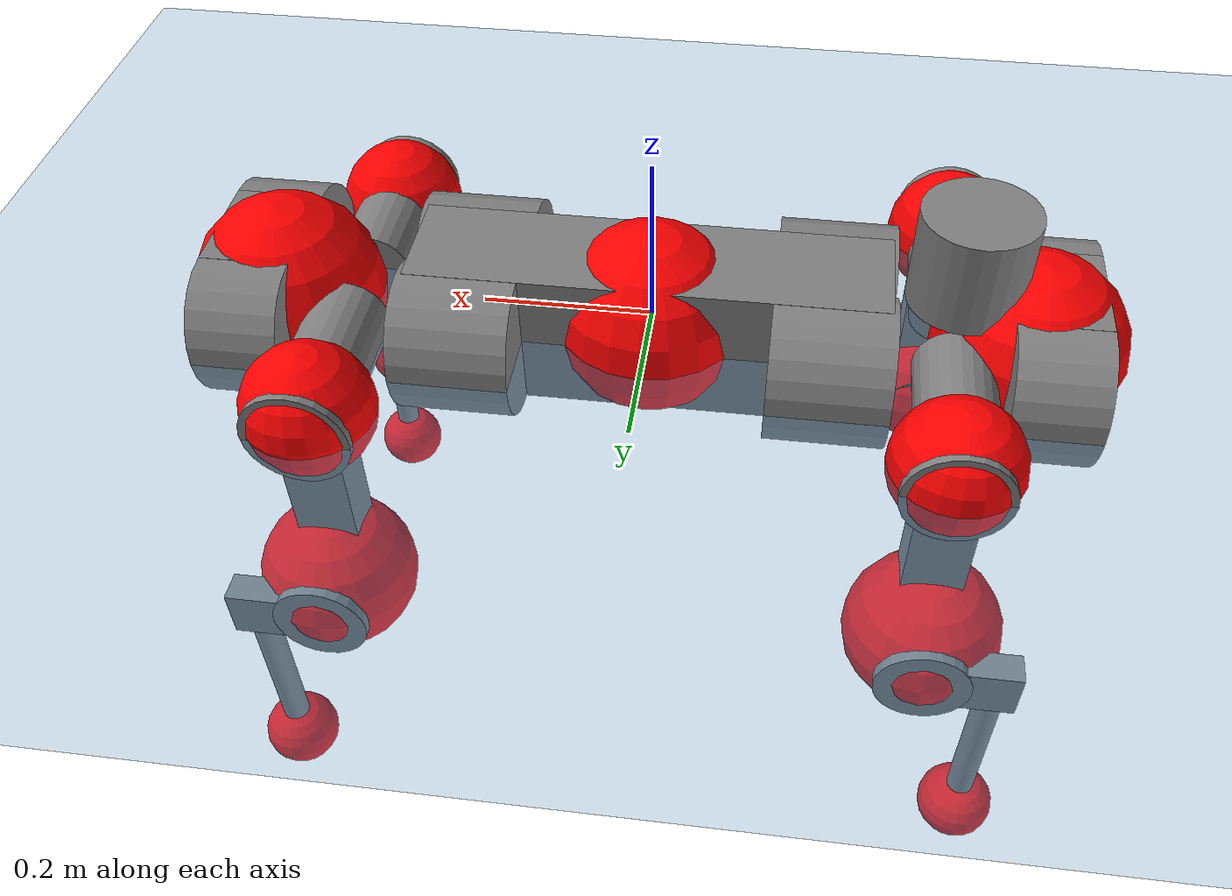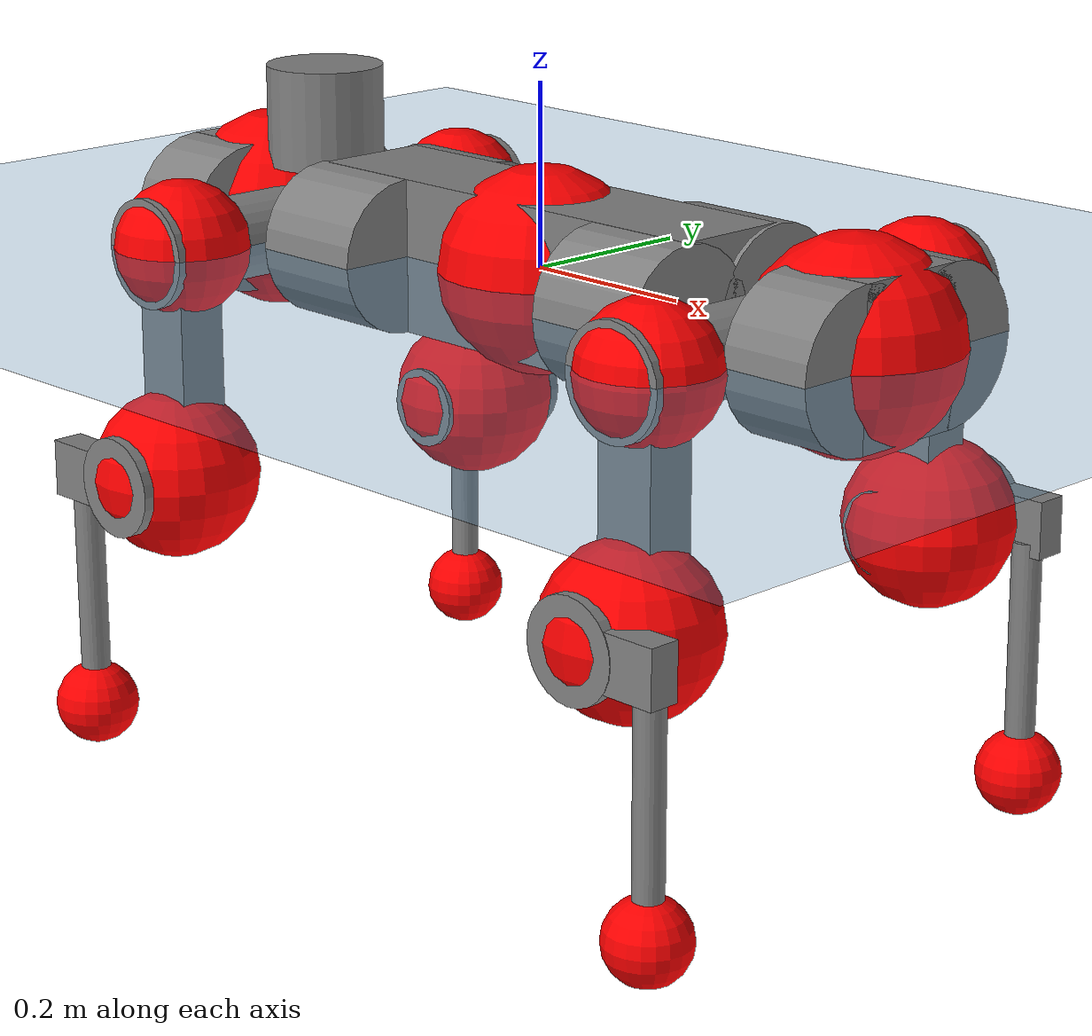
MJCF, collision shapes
<mujoco model="anymal_c">
  <compiler angle="radian" assetdir="assets" balanceinertia="true" inertiafromgeom="false"/>

  <option timestep="0.005" density="1.2" viscosity="2e-05"/>

  <size nkey="1"/>

  <visual>
    <quality shadowsize="8192"/>
    <map shadowclip="0.5"/>
  </visual>

  <default>
    <default class="/">
      <material specular="0" shininess="0.25"/>
      <geom contype="0" conaffinity="0" group="1" solref="-1000 -80"/>
      <site size="0.01 0.005 0.005" group="5"/>
      <general forcelimited="true" forcerange="-80 80" biastype="affine" gainprm="80" biasprm="0 -80 -2"/>
      <default class="anymal_c">
        <joint armature="0.01" damping="0.01" frictionloss="0.1"/>
        <default class="visual">
          <geom type="mesh" group="2"/>
          <default class="visual_zflip"/>
        </default>
        <default class="collision">
          <geom type="cylinder" group="3"/>
          <default class="foot">
            <geom size="0.03 0 0" type="sphere" condim="6" priority="1" friction="0.8 0.02 0.01" solimp="0.015 1 0.03"/>
          </default>
        </default>
      </default>
      <default class="reward_collision_sphere">
        <geom group="5" rgba="1 0 0 1"/>
      </default>
    </default>
  </default>

  <asset>
    <texture type="skybox" colorspace="auto" name="//unnamed_texture_0" builtin="gradient" rgb1="0.95 0.95 0.95" rgb2="0.95 0.95 0.95" width="100" height="600"/>
    <texture type="2d" colorspace="auto" name="texplane" builtin="checker" rgb1="0.345 0.575 0.748" rgb2="0.345 0.575 0.748" markrgb="1 1 1" width="512" height="512"/>
    <texture type="2d" colorspace="linear" name="base" file="base.png"/>
    <texture type="2d" colorspace="linear" name="top_shell" file="top_shell.png"/>
    <texture type="2d" colorspace="linear" name="bottom_shell" file="bottom_shell.png"/>
    <texture type="2d" colorspace="linear" name="remote" file="remote.png"/>
    <texture type="2d" colorspace="linear" name="hatch" file="hatch.png"/>
    <texture type="2d" colorspace="linear" name="handle" file="handle.png"/>
    <texture type="2d" colorspace="linear" name="face" file="face.png"/>
    <texture type="2d" colorspace="linear" name="battery" file="battery.png"/>
    <texture type="2d" colorspace="linear" name="lidar_cage" file="lidar_cage.png"/>
    <texture type="2d" colorspace="linear" name="depth_camera" file="depth_camera.png"/>
    <texture type="2d" colorspace="linear" name="wide_angle_camera" file="wide_angle_camera.png"/>
    <texture type="2d" colorspace="linear" name="lidar" file="lidar.png"/>
    <texture type="2d" colorspace="linear" name="drive" file="drive.png"/>
    <texture type="2d" colorspace="linear" name="hip_l" file="hip_l.png"/>
    <texture type="2d" colorspace="linear" name="shank_l" file="shank_l.png"/>
    <texture type="2d" colorspace="linear" name="foot" file="foot.png"/>
    <texture type="2d" colorspace="linear" name="thigh" file="thigh.png"/>
    <texture type="2d" colorspace="linear" name="shank_r" file="shank_r.png"/>
    <texture type="2d" colorspace="linear" name="hip_r" file="hip_r.png"/>
    <material name="MatPlane" class="/" texture="texplane" texuniform="true" texrepeat="2 2" specular="0.9" shininess="0.5"/>
    <material name="black_plastic" class="/" rgba="0.007 0.007 0.007 1"/>
    <material name="green" class="/" rgba="0.052 0.178 0.033 1"/>
    <material name="red" class="/" rgba="0.178 0.006 0.005 1"/>
    <material name="yellow" class="/" rgba="0.178 0.119 0.006 1"/>
    <material name="lwl" class="/" rgba="0.8 0.8 0.8 1"/>
    <material name="base" class="/" texture="base"/>
    <material name="top_shell" class="/" texture="top_shell"/>
    <material name="bottom_shell" class="/" texture="bottom_shell"/>
    <material name="hip_l" class="/" texture="hip_l"/>
    <material name="thigh" class="/" texture="thigh"/>
    <material name="shank_l" class="/" texture="shank_l"/>
    <material name="foot" class="/" texture="foot"/>
    <material name="hip_r" class="/" texture="hip_r"/>
    <material name="shank" class="/" texture="shank_r"/>
    <material name="hatch" class="/" texture="hatch"/>
    <material name="remote" class="/" texture="remote"/>
    <material name="handle" class="/" texture="handle"/>
    <material name="face" class="/" texture="face"/>
    <material name="depth_camera" class="/" texture="depth_camera"/>
    <material name="wide_angle_camera" class="/" texture="wide_angle_camera"/>
    <material name="battery" class="/" texture="battery"/>
    <material name="lidar_cage" class="/" texture="lidar_cage"/>
    <material name="lidar" class="/" texture="lidar"/>
    <material name="drive" class="/" texture="drive"/>
    <mesh name="base_0" class="/" file="base_0.obj"/>
    <mesh name="base_1" class="/" file="base_1.obj"/>
    <mesh name="base_2" class="/" file="base_2.obj"/>
    <mesh name="base_3" class="/" file="base_3.obj"/>
    <mesh name="base_4" class="/" file="base_4.obj"/>
    <mesh name="base_5" class="/" file="base_5.obj"/>
    <mesh name="top_shell" class="/" file="top_shell.obj"/>
    <mesh name="bottom_shell" class="/" file="bottom_shell.obj"/>
    <mesh name="remote" class="/" file="remote.obj"/>
    <mesh name="handle" class="/" file="handle.obj"/>
    <mesh name="face" class="/" file="face.obj"/>
    <mesh name="wide_angle_camera" class="/" file="wide_angle_camera.obj"/>
    <mesh name="depth_camera" class="/" file="depth_camera.obj"/>
    <mesh name="battery" class="/" file="battery.obj"/>
    <mesh name="lidar_cage" class="/" file="lidar_cage.obj"/>
    <mesh name="lidar" class="/" file="lidar.obj"/>
    <mesh name="drive" class="/" file="drive.obj"/>
    <mesh name="hip_l" class="/" file="hip_l.obj"/>
    <mesh name="thigh" class="/" file="thigh.obj"/>
    <mesh name="shank_l" class="/" file="shank_l.obj"/>
    <mesh name="foot" class="/" file="foot.obj"/>
    <mesh name="hip_r" class="/" file="hip_r.obj"/>
    <mesh name="hatch" class="/" file="hatch.obj"/>
    <mesh name="shank_r" class="/" file="shank_r.obj"/>
  </asset>

  <worldbody>
    <geom name="floor" class="/" size="100 100 0.125" type="plane" group="0" material="MatPlane"/>
    <light name="toplight_shadow" class="/" pos="0 0 5" dir="0.0990148 0.0990148 -0.990148" type="directional" ambient="0.04 0.04 0.04" diffuse="0.55 0.55 0.55" specular="0.12 0.12 0.12"/>
    <light name="toplight_fill" class="/" pos="0 0 5" dir="0.0990148 0.0990148 -0.990148" type="directional" castshadow="false" ambient="0.04 0.04 0.04" diffuse="0.3 0.3 0.3" specular="0.08 0.08 0.08"/>
    <body name="trunk" childclass="anymal_c" pos="0.000882073 0.00220602 -0.00105225" quat="1 -2.94519e-05 1.93273e-05 -1.00084e-05">
      <inertial pos="0.00137469 0.000583344 0.0437606" quat="0.493765 0.50301 0.507 0.496113" mass="16.2095" diaginertia="0.512878 0.508401 0.114466"/>
      <joint name="//unnamed_joint_0" type="free" armature="0" damping="0" frictionloss="0"/>
      <geom name="//unnamed_geom_1" class="visual" material="green" mesh="base_0"/>
      <geom name="//unnamed_geom_2" class="visual" material="yellow" mesh="base_1"/>
      <geom name="//unnamed_geom_3" class="visual" material="red" mesh="base_2"/>
      <geom name="//unnamed_geom_4" class="visual" material="black_plastic" mesh="base_3"/>
      <geom name="//unnamed_geom_5" class="visual" material="lwl" mesh="base_4"/>
      <geom name="//unnamed_geom_6" class="visual" material="base" mesh="base_5"/>
      <geom name="trunk_1" class="collision" size="0.272651 0.0658122 0.0846157" type="box"/>
      <geom name="trunk_2" class="collision" size="0.0846157 0.0681627" pos="0.210209 0.0674564 0" quat="0.707107 0 0.707107 0"/>
      <geom name="trunk_3" class="collision" size="0.0846157 0.0681627" pos="-0.210209 0.0674564 0" quat="0.707107 0 0.707107 0"/>
      <geom name="trunk_4" class="collision" size="0.0846157 0.0681627" pos="0.210209 -0.0674564 0" quat="0.707107 0 0.707107 0"/>
      <geom name="trunk_5" class="collision" size="0.0846157 0.0681627" pos="-0.210209 -0.0674564 0" quat="0.707107 0 0.707107 0"/>
      <geom name="//unnamed_geom_12" class="visual" material="top_shell" mesh="top_shell"/>
      <geom name="//unnamed_geom_13" class="visual" material="bottom_shell" mesh="bottom_shell"/>
      <geom name="//unnamed_geom_14" class="visual" material="remote" mesh="remote"/>
      <geom name="//unnamed_geom_15" class="visual" material="handle" mesh="handle"/>
      <geom name="//unnamed_geom_16" class="visual" pos="0.400605 0 0" quat="1 0 0 0" material="face" mesh="face"/>
      <geom name="trunk_6" class="collision" size="0.0517096 0.0658122 0.0846157" pos="0.453761 0 0" type="box"/>
      <geom name="//unnamed_geom_18" class="collision" size="0.0846157 0.0517096" pos="0.453761 0.0674564 0" quat="0.707107 0 0.707107 0"/>
      <geom name="//unnamed_geom_19" class="collision" size="0.0846157 0.0517096" pos="0.453761 -0.0674564 0" quat="0.707107 0 0.707107 0"/>
      <geom name="//unnamed_geom_20" class="visual" pos="0.446171 0 -0.0254209" quat="0.965926 0 0.258819 0" material="depth_camera" mesh="depth_camera"/>
      <geom name="//unnamed_geom_21" class="visual" pos="0.495803 0 0.0133291" material="wide_angle_camera" mesh="wide_angle_camera"/>
      <geom name="//unnamed_geom_22" class="visual_zflip" pos="-0.400605 0 0" quat="0 0 0 1" material="face" mesh="face"/>
      <geom name="trunk_7" class="collision" size="0.0517096 0.0658122 0.0846157" pos="-0.453761 0 0" quat="0 0 0 1" type="box"/>
      <geom name="//unnamed_geom_24" class="collision" size="0.0846157 0.0517096" pos="-0.453761 -0.0674564 0" quat="0 -0.707107 0 0.707107"/>
      <geom name="//unnamed_geom_25" class="collision" size="0.0846157 0.0517096" pos="-0.453761 0.0674564 0" quat="0 -0.707107 0 0.707107"/>
      <geom name="//unnamed_geom_26" class="visual" pos="-0.446171 0 -0.0254209" quat="0 -0.258819 0 0.965926" material="depth_camera" mesh="depth_camera"/>
      <geom name="//unnamed_geom_27" class="visual_zflip" pos="-0.495803 0 0.0133291" quat="0 0 0 1" material="wide_angle_camera" mesh="wide_angle_camera"/>
      <geom name="//unnamed_geom_28" class="visual" material="battery" mesh="battery"/>
      <geom name="//unnamed_geom_29" class="visual" pos="0 0.0736416 0.026444" quat="0.683013 -0.183013 0.183013 0.683013" material="depth_camera" mesh="depth_camera"/>
      <geom name="//unnamed_geom_30" class="visual" pos="0 -0.0736416 0.026444" quat="0.683013 0.183013 0.183013 -0.683013" material="depth_camera" mesh="depth_camera"/>
      <geom name="//unnamed_geom_31" class="visual" pos="-0.351798 0 0.0654433" quat="1 0 0 0" material="lidar_cage" mesh="lidar_cage"/>
      <geom name="trunk_8" class="collision" size="0.0658122 0.0564105" pos="-0.351798 0 0.118866"/>
      <geom name="//unnamed_geom_33" class="visual" pos="-0.351798 -1.10544e-06 0.126613" quat="0.707107 0 0 -0.707107" material="lidar" mesh="lidar"/>
      <geom name="//unnamed_geom_34" class="visual" pos="0.289846 0.100195 1.26406e-09" quat="0.258819 0.965926 0 0" material="drive" mesh="drive"/>
      <geom name="//unnamed_geom_35" class="visual" pos="0.289846 -0.100195 -1.26406e-09" quat="0.258819 -0.965926 0 0" material="drive" mesh="drive"/>
      <geom name="//unnamed_geom_36" class="visual" pos="-0.289846 0.100195 -1.26406e-09" quat="0 0 0.965926 -0.258819" material="drive" mesh="drive"/>
      <geom name="//unnamed_geom_37" class="visual" pos="-0.289846 -0.100195 1.26406e-09" quat="0 0 -0.965926 -0.258819" material="drive" mesh="drive"/>
      <geom name="//unnamed_geom_38" class="visual" pos="0.112111 0 0.0649981" quat="1 0 0 0" material="hatch" mesh="hatch"/>
      <geom name="//unnamed_geom_39" class="reward_collision_sphere" size="0.112821"/>
      <geom name="//unnamed_geom_40" class="reward_collision_sphere" size="0.112821" pos="0.434915 0 0"/>
      <geom name="//unnamed_geom_41" class="reward_collision_sphere" size="0.112821" pos="-0.434915 0 0"/>
      <site name="imu" pos="0.243656 0.0356741 0.0307816" size="0.00940175"/>
      <camera name="track" pos="0 -1.92733 0" quat="0.707107 0.707107 0 0" mode="trackcom"/>
      <camera name="ego_camera" pos="0.434915 0 -0.0356154" quat="-0.5 -0.5 0.5 0.5"/>
      <body name="LF_HIP" pos="0.290298 0.100819 0.00312144" quat="0.256928 0.966429 -0.000521111 0.00157234">
        <inertial pos="0.0538717 -0.0130891 -0.00968083" quat="-0.130765 0.708461 -0.131253 0.680996" mass="2.19429" diaginertia="0.00471685 0.00384811 0.00177297"/>
        <joint name="LF_HAA" pos="0 0 0" axis="0.999992 -0.00311277 0.0026327" range="-0.791883 0.50633" armature="0.00868425" damping="0.0191607" frictionloss="0.0831532"/>
        <geom name="//unnamed_geom_42" class="visual" pos="0 7.43592e-05 -1.22134e-05" quat="0.258819 -0.965926 0 0" material="hip_l" mesh="hip_l"/>
        <geom name="//unnamed_geom_43" class="visual" pos="0.057892 -0.0700854 -0.0399218" quat="0.183013 -0.683013 0.683013 0.183013" material="drive" mesh="drive"/>
        <geom name="//unnamed_geom_44" class="collision" size="0.0470087 0.0658122" pos="0.057892 -0.0115252 -0.00614811" quat="-0.353553 -0.612372 0.612372 -0.353553"/>
        <body name="LF_THIGH" pos="0.0584465 -0.0707695 -0.0418067" quat="0.183099 -0.682861 0.683004 0.183523">
          <inertial pos="0.0299231 0.00378577 -0.213186" quat="0.993886 0.00430585 -0.0734241 0.0823499" mass="2.49568" diaginertia="0.0264998 0.0248387 0.00243525"/>
          <joint name="LF_HFE" pos="0 0 0" axis="0.999976 0.0025325 -0.0064505" stiffness="0.00515811" range="-3.14615 3.04074" armature="0.00907863" damping="0.0286999" frictionloss="0.0936377"/>
          <geom name="//unnamed_geom_45" class="visual" pos="5.59825e-05 8.82152e-08 0" quat="0.707107 0 0 -0.707107" material="thigh" mesh="thigh"/>
          <geom name="//unnamed_geom_46" class="collision" size="0.0611114 0.037607" pos="0.0386591 0 0" quat="0.5 0.5 -0.5 -0.5"/>
          <geom name="//unnamed_geom_47" class="collision" size="0.0352566 0.0282052 0.13286" pos="0.0289943 0 -0.125824" quat="0.707107 0 0 -0.707107" type="box"/>
          <geom name="//unnamed_geom_48" class="visual" pos="0.0969376 0 -0.25376" quat="1 0 0 0" material="drive" mesh="drive"/>
          <geom name="//unnamed_geom_49" class="collision" size="0.0470087 0.0658122" pos="0.0292843 0 -0.25376" quat="0.707107 0 0.707107 0"/>
          <geom name="//unnamed_geom_50" class="reward_collision_sphere" size="0.075214" pos="0.0241619 0 0"/>
          <body name="LF_SHANK" pos="0.0912869 -0.00444728 -0.254167" quat="1 -0.000208416 -0.000148208 -0.000113081">
            <inertial pos="0.00297089 -0.0596226 -0.0723577" quat="0.992734 -0.117379 -0.00337977 -0.0262778" mass="0.465139" diaginertia="0.00847532 0.00741117 0.000620334"/>
            <joint name="LF_KFE" pos="0 0 0" axis="0.999975 -0.000724691 -0.00703486" stiffness="0.0228476" range="-3.14827 3.19874" armature="0.00976093" damping="0.00807319" frictionloss="0.0844656"/>
            <geom name="//unnamed_geom_51" class="visual" pos="1.82547e-05 9.73348e-05 0" quat="0.707107 0 0 -0.707107" material="shank_l" mesh="shank_l"/>
            <geom name="LF_kfe_act" class="collision" size="0.0564105 0.0188035" pos="0.0193295 0 0" quat="0.5 0.5 -0.5 -0.5"/>
            <geom name="//unnamed_geom_53" class="collision" size="0.0540591 0.0317309 0.0178633" pos="0.0193295 -0.0554097 0" quat="0.5 0.5 -0.5 -0.5" type="box"/>
            <geom name="//unnamed_geom_54" class="visual" pos="0.0126125 -0.0847228 -0.300923" quat="0.382683 0 0 -0.92388" material="foot" mesh="foot"/>
            <geom name="LF_calf" class="collision" size="0.0164531 0.132802" pos="0.0126125 -0.0847542 -0.150462" quat="0.707107 0 0 -0.707107"/>
            <geom name="LF_foot" class="foot" size="0.03237" pos="0.0126125 -0.0847542 -0.28089" quat="0.707107 0 0 -0.707107"/>
            <geom name="//unnamed_geom_57" class="reward_collision_sphere" size="0.0940175" pos="-0.0483238 0 0"/>
            <geom name="//unnamed_geom_58" class="reward_collision_sphere" size="0.0470087" pos="0.0126125 -0.0847542 -0.28089"/>
            <site name="LF_foot" class="foot" pos="0.0126125 -0.0847542 -0.28089" quat="0.707107 0 0 -0.707107" size="0.00940175"/>
          </body>
        </body>
      </body>
      <body name="RF_HIP" pos="0.291341 -0.0990338 -0.00387898" quat="0.258604 -0.965983 0.000367269 -0.000204854">
        <inertial pos="0.0524687 0.0154279 -0.00767052" quat="0.135058 0.689336 0.138472 0.69814" mass="2.2077" diaginertia="0.00462703 0.00395804 0.00179764"/>
        <joint name="RF_HAA" pos="0 0 0" axis="0.999995 -0.00267183 -0.00185235" range="-0.513621 0.740507" armature="0.00944014" damping="0.00661262" frictionloss="0.104372"/>
        <geom name="//unnamed_geom_59" class="visual" pos="0 -7.43586e-05 -1.22134e-05" quat="0.258819 0.965926 0 0" material="hip_r" mesh="hip_r"/>
        <geom name="//unnamed_geom_60" class="visual" pos="0.057892 0.0700854 -0.0399218" quat="0.183013 0.683013 0.683013 -0.183013" material="drive" mesh="drive"/>
        <geom name="//unnamed_geom_61" class="collision" size="0.0470087 0.0658122" pos="0.057892 0.0115252 -0.00614811" quat="-0.353553 0.612372 0.612372 0.353553"/>
        <body name="RF_THIGH" pos="0.0593651 0.066882 -0.035675" quat="0.182612 0.683385 0.682846 -0.182642">
          <inertial pos="0.0302245 -0.000281087 -0.214356" quat="0.993689 -0.0184612 -0.0897419 0.0647115" mass="2.49227" diaginertia="0.0239374 0.0236158 0.00222676"/>
          <joint name="RF_HFE" pos="0 0 0" axis="0.999996 0.000726287 0.002817" stiffness="0.00623218" range="-3.05939 3.1032" armature="0.0102067" damping="0.0137825" frictionloss="0.105846"/>
          <geom name="//unnamed_geom_62" class="visual" pos="5.59825e-05 8.82152e-08 0" quat="0.707107 0 0 -0.707107" material="thigh" mesh="thigh"/>
          <geom name="//unnamed_geom_63" class="collision" size="0.0611114 0.037607" pos="0.0386591 0 0" quat="0.5 0.5 0.5 0.5"/>
          <geom name="//unnamed_geom_64" class="collision" size="0.0352566 0.0282052 0.13286" pos="0.0289943 0 -0.125824" quat="0.707107 0 0 0.707107" type="box"/>
          <geom name="//unnamed_geom_65" class="visual" pos="0.0969376 0 -0.25376" quat="1 0 0 0" material="drive" mesh="drive"/>
          <geom name="//unnamed_geom_66" class="collision" size="0.0470087 0.0658122" pos="0.0292843 0 -0.25376" quat="0.707107 0 0.707107 0"/>
          <geom name="//unnamed_geom_67" class="reward_collision_sphere" size="0.075214" pos="0.0241619 0 0"/>
          <body name="RF_SHANK" pos="0.095394 0.00169543 -0.253089" quat="1 -0.000151416 0.000131227 0.000291323">
            <inertial pos="0.00811944 0.0593994 -0.0776322" quat="0.99306 0.1155 0.000723809 0.0221593" mass="0.535102" diaginertia="0.00939964 0.00768878 0.000701086"/>
            <joint name="RF_KFE" pos="0 0 0" axis="0.999999 -0.00141539 0.000314146" range="-3.10641 3.12175" armature="0.00872608" damping="0.0100769" frictionloss="0.0951488"/>
            <geom name="//unnamed_geom_68" class="visual" pos="1.82546e-05 -9.73346e-05 0" quat="0.707107 0 0 0.707107" material="shank" mesh="shank_r"/>
            <geom name="RF_kfe_act" class="collision" size="0.0564105 0.0188035" pos="0.0193295 0 0" quat="0.5 0.5 0.5 0.5"/>
            <geom name="//unnamed_geom_70" class="collision" size="0.0540591 0.0317309 0.0178633" pos="0.0193295 0.0554097 0" quat="0.5 0.5 0.5 0.5" type="box"/>
            <geom name="//unnamed_geom_71" class="visual" pos="0.0126125 0.0847228 -0.300923" quat="0.382683 0 0 0.92388" material="foot" mesh="foot"/>
            <geom name="RF_calf" class="collision" size="0.0164531 0.132802" pos="0.0126125 0.0847542 -0.150462" quat="0.707107 0 0 0.707107"/>
            <geom name="RF_foot" class="foot" size="0.0301879" pos="0.0126125 0.0847542 -0.28089" quat="0.707107 0 0 0.707107"/>
            <geom name="//unnamed_geom_74" class="reward_collision_sphere" size="0.0940175" pos="-0.0483238 0 0"/>
            <geom name="//unnamed_geom_75" class="reward_collision_sphere" size="0.0470087" pos="0.0126125 0.0847542 -0.28089"/>
            <site name="RF_foot" class="foot" pos="0.0126125 0.0847542 -0.28089" quat="0.707107 0 0 0.707107" size="0.00940175"/>
          </body>
        </body>
      </body>
      <body name="LH_HIP" pos="-0.291181 0.0992264 0.00364697" quat="-0.000411045 0.000452008 0.965863 -0.259053">
        <inertial pos="0.0542819 0.0128942 -0.00391394" quat="0.136116 0.681066 0.137602 0.706178" mass="2.15334" diaginertia="0.00464967 0.00400782 0.00182637"/>
        <joint name="LH_HAA" pos="0 0 0" axis="1 0.000311107 -0.00019147" stiffness="0.00599682" range="-0.593645 0.652608" armature="0.00953522" damping="0.00602659" frictionloss="0.0781357"/>
        <geom name="//unnamed_geom_76" class="visual" pos="0 -7.43586e-05 -1.22134e-05" quat="-0.258819 -0.965926 0 0" material="hip_r" mesh="hip_r"/>
        <geom name="//unnamed_geom_77" class="visual" pos="0.057892 0.0700854 -0.0399218" quat="0.183013 0.683013 0.683013 -0.183013" material="drive" mesh="drive"/>
        <geom name="//unnamed_geom_78" class="collision" size="0.0470087 0.0658122" pos="0.057892 0.0115252 -0.00614811" quat="-0.353553 0.612372 0.612372 0.353553"/>
        <body name="LH_THIGH" pos="0.0572961 0.0686436 -0.0341435" quat="0.183086 0.683043 0.682975 -0.182966">
          <inertial pos="0.0328943 0.00204472 -0.213262" quat="0.994479 -0.00273905 -0.0665754 0.0810615" mass="2.52611" diaginertia="0.0273841 0.0254184 0.00249804"/>
          <joint name="LH_HFE" pos="0 0 0" axis="0.999882 -0.0150304 0.00315005" range="-3.07347 3.08788" armature="0.010404" damping="0.0187885" frictionloss="0.0957671"/>
          <geom name="//unnamed_geom_79" class="visual" pos="5.59825e-05 8.82152e-08 0" quat="0.707107 0 0 -0.707107" material="thigh" mesh="thigh"/>
          <geom name="//unnamed_geom_80" class="collision" size="0.0611114 0.037607" pos="0.0386591 0 0" quat="0.5 0.5 -0.5 -0.5"/>
          <geom name="//unnamed_geom_81" class="collision" size="0.0352566 0.0282052 0.13286" pos="0.0289943 0 -0.125824" quat="0.707107 0 0 -0.707107" type="box"/>
          <geom name="//unnamed_geom_82" class="visual" pos="0.0969376 0 -0.25376" quat="1 0 0 0" material="drive" mesh="drive"/>
          <geom name="//unnamed_geom_83" class="collision" size="0.0470087 0.0658122" pos="0.0292843 0 -0.25376" quat="0.707107 0 0.707107 0"/>
          <geom name="//unnamed_geom_84" class="reward_collision_sphere" size="0.075214" pos="0.0241619 0 0"/>
          <body name="LH_SHANK" pos="0.0969036 0.00152072 -0.252756" quat="1 0.000269381 -0.000564361 -0.000738794">
            <inertial pos="0.00583646 0.058747 -0.0722355" quat="0.992627 0.118282 0.00821441 0.0251757" mass="0.491555" diaginertia="0.00855731 0.00777306 0.000603126"/>
            <joint name="LH_KFE" pos="0 0 0" axis="0.999985 -0.00252627 0.00476872" stiffness="0.0269559" range="-3.09939 3.13729" armature="0.0101778" damping="0.0208722" frictionloss="0.0958498"/>
            <geom name="//unnamed_geom_85" class="visual" pos="1.82546e-05 -9.73346e-05 0" quat="-0.707107 0 0 -0.707107" material="shank" mesh="shank_r"/>
            <geom name="LH_kfe_act" class="collision" size="0.0564105 0.0188035" pos="0.0193295 0 0" quat="0.5 0.5 -0.5 -0.5"/>
            <geom name="//unnamed_geom_87" class="collision" size="0.0540591 0.0317309 0.0178633" pos="0.0193295 0.0554097 0" quat="0.5 0.5 -0.5 -0.5" type="box"/>
            <geom name="//unnamed_geom_88" class="visual" pos="0.0126125 0.0847228 -0.300923" quat="-0.382683 0 0 -0.92388" material="foot" mesh="foot"/>
            <geom name="LH_calf" class="collision" size="0.0164531 0.132802" pos="0.0126125 0.0847542 -0.150462" quat="0.707107 0 0 -0.707107"/>
            <geom name="LH_foot" class="foot" size="0.0306278" pos="0.0126125 0.0847542 -0.28089" quat="0.707107 0 0 -0.707107"/>
            <geom name="//unnamed_geom_91" class="reward_collision_sphere" size="0.0940175" pos="-0.0483238 0 0"/>
            <geom name="//unnamed_geom_92" class="reward_collision_sphere" size="0.0470087" pos="0.0126125 0.0847542 -0.28089"/>
            <site name="LH_foot" class="foot" pos="0.0126125 0.0847542 -0.28089" quat="0.707107 0 0 -0.707107" size="0.00940175"/>
          </body>
        </body>
      </body>
      <body name="RH_HIP" pos="-0.289827 -0.103468 -0.00159278" quat="0.000378518 -0.000821445 -0.965889 -0.258956">
        <inertial pos="0.0545673 -0.0179601 -0.00661535" quat="-0.127764 0.70955 -0.135161 0.679667" mass="2.50146" diaginertia="0.00508741 0.00420548 0.00196192"/>
        <joint name="RH_HAA" pos="0 0 0" axis="0.999952 -0.00975214 0.000396258" range="-0.683476 0.531281" armature="0.0090419" damping="0.0208102" frictionloss="0.103842"/>
        <geom name="//unnamed_geom_93" class="visual" pos="0 7.43592e-05 -1.22134e-05" quat="-0.258819 0.965926 0 0" material="hip_l" mesh="hip_l"/>
        <geom name="//unnamed_geom_94" class="visual" pos="0.057892 -0.0700854 -0.0399218" quat="-0.183013 0.683013 -0.683013 -0.183013" material="drive" mesh="drive"/>
        <geom name="//unnamed_geom_95" class="collision" size="0.0470087 0.0658122" pos="0.057892 -0.0115252 -0.00614811" quat="0.353553 0.612372 -0.612372 0.353553"/>
        <body name="RH_THIGH" pos="0.0604309 -0.0707802 -0.0412406" quat="-0.182776 0.683411 -0.6827 -0.18293">
          <inertial pos="0.0298271 -0.000910081 -0.218939" quat="0.993136 -0.0048962 -0.0813883 0.0838607" mass="2.69095" diaginertia="0.0266764 0.0249916 0.00234482"/>
          <joint name="RH_HFE" pos="0 0 0" axis="0.999929 -0.0104918 -0.00572229" range="-3.05946 3.07493" armature="0.00942246" damping="0.00763422" frictionloss="0.104682"/>
          <geom name="//unnamed_geom_96" class="visual" pos="5.59825e-05 8.82152e-08 0" quat="0.707107 0 0 -0.707107" material="thigh" mesh="thigh"/>
          <geom name="//unnamed_geom_97" class="collision" size="0.0611114 0.037607" pos="0.0386591 0 0" quat="0.5 0.5 0.5 0.5"/>
          <geom name="//unnamed_geom_98" class="collision" size="0.0352566 0.0282052 0.13286" pos="0.0289943 0 -0.125824" quat="0.707107 0 0 0.707107" type="box"/>
          <geom name="//unnamed_geom_99" class="visual" pos="0.0969376 0 -0.25376" quat="1 0 0 0" material="drive" mesh="drive"/>
          <geom name="//unnamed_geom_100" class="collision" size="0.0470087 0.0658122" pos="0.0292843 0 -0.25376" quat="0.707107 0 0.707107 0"/>
          <geom name="//unnamed_geom_101" class="reward_collision_sphere" size="0.075214" pos="0.0241619 0 0"/>
          <body name="RH_SHANK" pos="0.0926848 0.000478665 -0.254267" quat="0.999999 0.000913044 0.000823797 -0.000453585">
            <inertial pos="0.00753486 -0.0589897 -0.0710887" quat="0.992308 -0.122669 -0.00245997 -0.0164427" mass="0.499693" diaginertia="0.00834523 0.00757197 0.00063816"/>
            <joint name="RH_KFE" pos="0 0 0" axis="0.999995 -0.00316449 0.000843875" range="-3.13373 3.1466" armature="0.00881472" damping="0.0302521" frictionloss="0.0956863"/>
            <geom name="//unnamed_geom_102" class="visual" pos="1.82547e-05 9.73348e-05 0" quat="0.707107 0 0 -0.707107" material="shank_l" mesh="shank_l"/>
            <geom name="RH_kfe_act" class="collision" size="0.0564105 0.0188035" pos="0.0193295 0 0" quat="0.5 0.5 0.5 0.5"/>
            <geom name="//unnamed_geom_104" class="collision" size="0.0540591 0.0317309 0.0178633" pos="0.0193295 -0.0554097 0" quat="0.5 0.5 0.5 0.5" type="box"/>
            <geom name="//unnamed_geom_105" class="visual" pos="0.0126125 -0.0847228 -0.300923" quat="0.382683 0 0 -0.92388" material="foot" mesh="foot"/>
            <geom name="RH_calf" class="collision" size="0.0164531 0.132802" pos="0.0126125 -0.0847542 -0.150462" quat="0.707107 0 0 0.707107"/>
            <geom name="RH_foot" class="foot" size="0.0215921" pos="0.0126125 -0.0847542 -0.28089" quat="0.707107 0 0 0.707107"/>
            <geom name="//unnamed_geom_108" class="reward_collision_sphere" size="0.0940175" pos="-0.0483238 0 0"/>
            <geom name="//unnamed_geom_109" class="reward_collision_sphere" size="0.0470087" pos="0.0126125 -0.0847542 -0.28089"/>
            <site name="RH_foot" class="foot" pos="0.0126125 -0.0847542 -0.28089" quat="0.707107 0 0 0.707107" size="0.00940175"/>
          </body>
        </body>
      </body>
    </body>
  </worldbody>

  <contact>
    <pair class="/" geom1="floor" geom2="LF_foot" name="//unnamed_contact_0"/>
    <pair class="/" geom1="floor" geom2="RF_foot" name="//unnamed_contact_1"/>
    <pair class="/" geom1="floor" geom2="LH_foot" name="//unnamed_contact_2"/>
    <pair class="/" geom1="floor" geom2="RH_foot" name="//unnamed_contact_3"/>
  </contact>

  <actuator>
    <general name="LF_HAA" class="/" joint="LF_HAA" forcerange="-84.5693 84.5693" gainprm="70.3914" biasprm="0 -70.3914 -1.72564"/>
    <general name="LF_HFE" class="/" joint="LF_HFE" forcerange="-67.908 67.908" gainprm="70.3914" biasprm="0 -70.3914 -1.72564"/>
    <general name="LF_KFE" class="/" joint="LF_KFE" forcerange="-84.5413 84.5413" gainprm="70.3914" biasprm="0 -70.3914 -1.72564"/>
    <general name="RF_HAA" class="/" joint="RF_HAA" forcerange="-82.1136 82.1136" gainprm="70.3914" biasprm="0 -70.3914 -1.72564"/>
    <general name="RF_HFE" class="/" joint="RF_HFE" forcerange="-76.4524 76.4524" gainprm="70.3914" biasprm="0 -70.3914 -1.72564"/>
    <general name="RF_KFE" class="/" joint="RF_KFE" forcerange="-58.52 58.52" gainprm="70.3914" biasprm="0 -70.3914 -1.72564"/>
    <general name="LH_HAA" class="/" joint="LH_HAA" forcerange="-64.8021 64.8021" gainprm="70.3914" biasprm="0 -70.3914 -1.72564"/>
    <general name="LH_HFE" class="/" joint="LH_HFE" forcerange="-79.0106 79.0106" gainprm="70.3914" biasprm="0 -70.3914 -1.72564"/>
    <general name="LH_KFE" class="/" joint="LH_KFE" forcerange="-82.5738 82.5738" gainprm="70.3914" biasprm="0 -70.3914 -1.72564"/>
    <general name="RH_HAA" class="/" joint="RH_HAA" forcerange="-77.4637 77.4637" gainprm="70.3914" biasprm="0 -70.3914 -1.72564"/>
    <general name="RH_HFE" class="/" joint="RH_HFE" forcerange="-89.904 89.904" gainprm="70.3914" biasprm="0 -70.3914 -1.72564"/>
    <general name="RH_KFE" class="/" joint="RH_KFE" forcerange="-80.8973 80.8973" gainprm="70.3914" biasprm="0 -70.3914 -1.72564"/>
  </actuator>

  <sensor>
    <gyro site="imu" name="imu_angular_velocity"/>
    <velocimeter site="imu" name="imu_linear_velocity"/>
    <framelinvel objtype="site" objname="LF_foot" name="LF_foot_global_linear_velocity"/>
    <framelinvel objtype="site" objname="RF_foot" name="RF_foot_global_linear_velocity"/>
    <framelinvel objtype="site" objname="LH_foot" name="LH_foot_global_linear_velocity"/>
    <framelinvel objtype="site" objname="RH_foot" name="RH_foot_global_linear_velocity"/>
  </sensor>

  <keyframe>
    <key name="home" qpos="0 0 0.55 1 0 0 0 0 0.4 -0.8 0 -0.4 0.8 0 -0.4 0.8 0 0.4 -0.8"/>
  </keyframe>
</mujoco>
